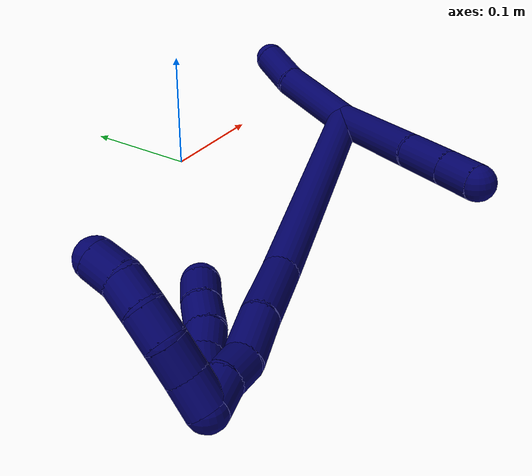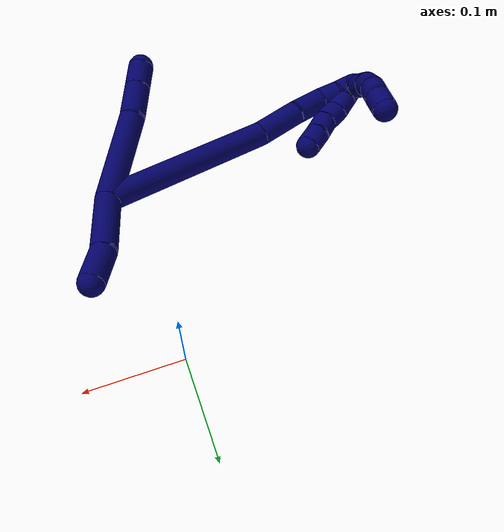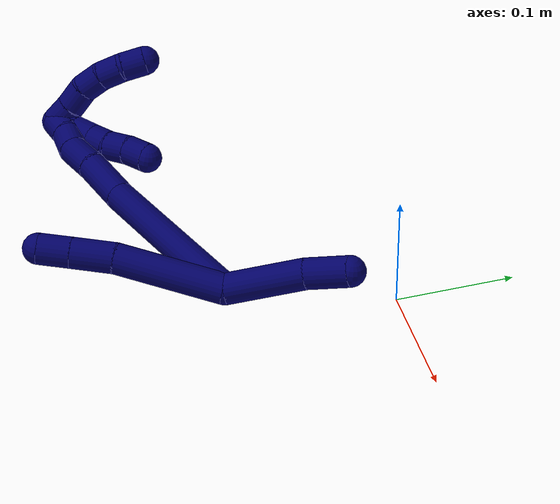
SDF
<sdf version="1.7">
 <world name="default">
  <model name="7">
   <static>0</static>
   <link name="7">
    <collision name="collision-cylinder-e_1_2_8">
     <pose>-0.015182 -0.04192 7.1e-05 1.56909 -0.347479 -0.3469</pose>
     <geometry><cylinder><radius>0.0125</radius><length>0.08917</length></cylinder></geometry>
     <surface>
      <friction><ode><mu>1.16</mu><mu2>1.16</mu2><slip1>0</slip1><slip2>0</slip2></ode></friction>
      <contact><ode><kp>1e+06</kp><kd>1</kd><max_vel>0</max_vel><min_depth>0.001</min_depth></ode></contact>
     </surface>
    </collision>
    <visual name="visual-cylinder-e_1_2_8">
     <pose>-0.015182 -0.04192 7.1e-05 1.56909 -0.347479 -0.3469</pose>
     <geometry><cylinder><radius>0.0125</radius><length>0.08917</length></cylinder></geometry>
     <material><ambient>0.003922 0 0.403922 1</ambient></material>
    </visual>
    <collision name="collision-cylinder-e_2_8_9">
     <pose>-0.034183 -0.100628 -0.001366 1.66041 -0.222776 -0.243495</pose>
     <geometry><cylinder><radius>0.0125</radius><length>0.034565</length></cylinder></geometry>
     <surface>
      <friction><ode><mu>1.16</mu><mu2>1.16</mu2><slip1>0</slip1><slip2>0</slip2></ode></friction>
      <contact><ode><kp>1e+06</kp><kd>1</kd><max_vel>0</max_vel><min_depth>0.001</min_depth></ode></contact>
     </surface>
    </collision>
    <visual name="visual-cylinder-e_2_8_9">
     <pose>-0.034183 -0.100628 -0.001366 1.66041 -0.222776 -0.243495</pose>
     <geometry><cylinder><radius>0.0125</radius><length>0.034565</length></cylinder></geometry>
     <material><ambient>0.003922 0 0.403922 1</ambient></material>
    </visual>
    <collision name="collision-cylinder-e_3_9_6">
     <pose>-0.040886 -0.130171 -0.004084 1.66534 -0.221406 -0.243187</pose>
     <geometry><cylinder><radius>0.0125</radius><length>0.026265</length></cylinder></geometry>
     <surface>
      <friction><ode><mu>1.16</mu><mu2>1.16</mu2><slip1>0</slip1><slip2>0</slip2></ode></friction>
      <contact><ode><kp>1e+06</kp><kd>1</kd><max_vel>0</max_vel><min_depth>0.001</min_depth></ode></contact>
     </surface>
    </collision>
    <visual name="visual-cylinder-e_3_9_6">
     <pose>-0.040886 -0.130171 -0.004084 1.66534 -0.221406 -0.243187</pose>
     <geometry><cylinder><radius>0.0125</radius><length>0.026265</length></cylinder></geometry>
     <material><ambient>0.003922 0 0.403922 1</ambient></material>
    </visual>
    <collision name="collision-cylinder-e_1_2_10">
     <pose>0.002641 0.029581 0.011891 -1.18857 0.082659 -0.055877</pose>
     <geometry><cylinder><radius>0.0125</radius><length>0.063981</length></cylinder></geometry>
     <surface>
      <friction><ode><mu>1.16</mu><mu2>1.16</mu2><slip1>0</slip1><slip2>0</slip2></ode></friction>
      <contact><ode><kp>1e+06</kp><kd>1</kd><max_vel>0</max_vel><min_depth>0.001</min_depth></ode></contact>
     </surface>
    </collision>
    <visual name="visual-cylinder-e_1_2_10">
     <pose>0.002641 0.029581 0.011891 -1.18857 0.082659 -0.055877</pose>
     <geometry><cylinder><radius>0.0125</radius><length>0.063981</length></cylinder></geometry>
     <material><ambient>0.003922 0 0.403922 1</ambient></material>
    </visual>
    <collision name="collision-cylinder-e_2_10_5">
     <pose>0.010724 0.074946 0.030535 -1.16657 0.306951 -0.203449</pose>
     <geometry><cylinder><radius>0.0125</radius><length>0.036019</length></cylinder></geometry>
     <surface>
      <friction><ode><mu>1.16</mu><mu2>1.16</mu2><slip1>0</slip1><slip2>0</slip2></ode></friction>
      <contact><ode><kp>1e+06</kp><kd>1</kd><max_vel>0</max_vel><min_depth>0.001</min_depth></ode></contact>
     </surface>
    </collision>
    <visual name="visual-cylinder-e_2_10_5">
     <pose>0.010724 0.074946 0.030535 -1.16657 0.306951 -0.203449</pose>
     <geometry><cylinder><radius>0.0125</radius><length>0.036019</length></cylinder></geometry>
     <material><ambient>0.003922 0 0.403922 1</ambient></material>
    </visual>
    <collision name="collision-cylinder-e_1_2_11">
     <pose>-0.079271 -0.035393 -0.018681 2.05645 -1.10327 -1.5912</pose>
     <geometry><cylinder><radius>0.0125</radius><length>0.1776</length></cylinder></geometry>
     <surface>
      <friction><ode><mu>1.16</mu><mu2>1.16</mu2><slip1>0</slip1><slip2>0</slip2></ode></friction>
      <contact><ode><kp>1e+06</kp><kd>1</kd><max_vel>0</max_vel><min_depth>0.001</min_depth></ode></contact>
     </surface>
    </collision>
    <visual name="visual-cylinder-e_1_2_11">
     <pose>-0.079271 -0.035393 -0.018681 2.05645 -1.10327 -1.5912</pose>
     <geometry><cylinder><radius>0.0125</radius><length>0.1776</length></cylinder></geometry>
     <material><ambient>0.003922 0 0.403922 1</ambient></material>
    </visual>
    <collision name="collision-cylinder-e_2_11_12">
     <pose>-0.179463 -0.081732 -0.038278 1.6543 -1.08734 -1.16274</pose>
     <geometry><cylinder><radius>0.0125</radius><length>0.047261</length></cylinder></geometry>
     <surface>
      <friction><ode><mu>1.16</mu><mu2>1.16</mu2><slip1>0</slip1><slip2>0</slip2></ode></friction>
      <contact><ode><kp>1e+06</kp><kd>1</kd><max_vel>0</max_vel><min_depth>0.001</min_depth></ode></contact>
     </surface>
    </collision>
    <visual name="visual-cylinder-e_2_11_12">
     <pose>-0.179463 -0.081732 -0.038278 1.6543 -1.08734 -1.16274</pose>
     <geometry><cylinder><radius>0.0125</radius><length>0.047261</length></cylinder></geometry>
     <material><ambient>0.003922 0 0.403922 1</ambient></material>
    </visual>
    <collision name="collision-cylinder-e_3_12_13">
     <pose>-0.215279 -0.100196 -0.041974 1.92487 -1.07705 -1.41799</pose>
     <geometry><cylinder><radius>0.0125</radius><length>0.033826</length></cylinder></geometry>
     <surface>
      <friction><ode><mu>1.16</mu><mu2>1.16</mu2><slip1>0</slip1><slip2>0</slip2></ode></friction>
      <contact><ode><kp>1e+06</kp><kd>1</kd><max_vel>0</max_vel><min_depth>0.001</min_depth></ode></contact>
     </surface>
    </collision>
    <visual name="visual-cylinder-e_3_12_13">
     <pose>-0.215279 -0.100196 -0.041974 1.92487 -1.07705 -1.41799</pose>
     <geometry><cylinder><radius>0.0125</radius><length>0.033826</length></cylinder></geometry>
     <material><ambient>0.003922 0 0.403922 1</ambient></material>
    </visual>
    <collision name="collision-cylinder-e_4_13_14">
     <pose>-0.240054 -0.110438 -0.043658 1.18863 -1.28208 -0.93412</pose>
     <geometry><cylinder><radius>0.0125</radius><length>0.020619</length></cylinder></geometry>
     <surface>
      <friction><ode><mu>1.16</mu><mu2>1.16</mu2><slip1>0</slip1><slip2>0</slip2></ode></friction>
      <contact><ode><kp>1e+06</kp><kd>1</kd><max_vel>0</max_vel><min_depth>0.001</min_depth></ode></contact>
     </surface>
    </collision>
    <visual name="visual-cylinder-e_4_13_14">
     <pose>-0.240054 -0.110438 -0.043658 1.18863 -1.28208 -0.93412</pose>
     <geometry><cylinder><radius>0.0125</radius><length>0.020619</length></cylinder></geometry>
     <material><ambient>0.003922 0 0.403922 1</ambient></material>
    </visual>
    <collision name="collision-cylinder-e_5_14_1">
     <pose>-0.259407 -0.117251 -0.043374 1.76635 -1.15612 -1.34251</pose>
     <geometry><cylinder><radius>0.0125</radius><length>0.020694</length></cylinder></geometry>
     <surface>
      <friction><ode><mu>1.16</mu><mu2>1.16</mu2><slip1>0</slip1><slip2>0</slip2></ode></friction>
      <contact><ode><kp>1e+06</kp><kd>1</kd><max_vel>0</max_vel><min_depth>0.001</min_depth></ode></contact>
     </surface>
    </collision>
    <visual name="visual-cylinder-e_5_14_1">
     <pose>-0.259407 -0.117251 -0.043374 1.76635 -1.15612 -1.34251</pose>
     <geometry><cylinder><radius>0.0125</radius><length>0.020694</length></cylinder></geometry>
     <material><ambient>0.003922 0 0.403922 1</ambient></material>
    </visual>
    <collision name="collision-cylinder-e_1_1_15">
     <pose>-0.262613 -0.113568 -0.043592 -1.4948 0.67694 -0.630691</pose>
     <geometry><cylinder><radius>0.0125</radius><length>0.02</length></cylinder></geometry>
     <surface>
      <friction><ode><mu>1.16</mu><mu2>1.16</mu2><slip1>0</slip1><slip2>0</slip2></ode></friction>
      <contact><ode><kp>1e+06</kp><kd>1</kd><max_vel>0</max_vel><min_depth>0.001</min_depth></ode></contact>
     </surface>
    </collision>
    <visual name="visual-cylinder-e_1_1_15">
     <pose>-0.262613 -0.113568 -0.043592 -1.4948 0.67694 -0.630691</pose>
     <geometry><cylinder><radius>0.0125</radius><length>0.02</length></cylinder></geometry>
     <material><ambient>0.003922 0 0.403922 1</ambient></material>
    </visual>
    <collision name="collision-cylinder-e_2_15_16">
     <pose>-0.249959 -0.098133 -0.042325 -1.48292 0.693153 -0.638817</pose>
     <geometry><cylinder><radius>0.0125</radius><length>0.02</length></cylinder></geometry>
     <surface>
      <friction><ode><mu>1.16</mu><mu2>1.16</mu2><slip1>0</slip1><slip2>0</slip2></ode></friction>
      <contact><ode><kp>1e+06</kp><kd>1</kd><max_vel>0</max_vel><min_depth>0.001</min_depth></ode></contact>
     </surface>
    </collision>
    <visual name="visual-cylinder-e_2_15_16">
     <pose>-0.249959 -0.098133 -0.042325 -1.48292 0.693153 -0.638817</pose>
     <geometry><cylinder><radius>0.0125</radius><length>0.02</length></cylinder></geometry>
     <material><ambient>0.003922 0 0.403922 1</ambient></material>
    </visual>
    <collision name="collision-cylinder-e_3_16_17">
     <pose>-0.236189 -0.084091 -0.039452 -1.23905 0.830204 -0.609067</pose>
     <geometry><cylinder><radius>0.0125</radius><length>0.02</length></cylinder></geometry>
     <surface>
      <friction><ode><mu>1.16</mu><mu2>1.16</mu2><slip1>0</slip1><slip2>0</slip2></ode></friction>
      <contact><ode><kp>1e+06</kp><kd>1</kd><max_vel>0</max_vel><min_depth>0.001</min_depth></ode></contact>
     </surface>
    </collision>
    <visual name="visual-cylinder-e_3_16_17">
     <pose>-0.236189 -0.084091 -0.039452 -1.23905 0.830204 -0.609067</pose>
     <geometry><cylinder><radius>0.0125</radius><length>0.02</length></cylinder></geometry>
     <material><ambient>0.003922 0 0.403922 1</ambient></material>
    </visual>
    <collision name="collision-cylinder-e_4_17_18">
     <pose>-0.223065 -0.069908 -0.034778 -1.26352 0.611744 -0.454212</pose>
     <geometry><cylinder><radius>0.0125</radius><length>0.02</length></cylinder></geometry>
     <surface>
      <friction><ode><mu>1.16</mu><mu2>1.16</mu2><slip1>0</slip1><slip2>0</slip2></ode></friction>
      <contact><ode><kp>1e+06</kp><kd>1</kd><max_vel>0</max_vel><min_depth>0.001</min_depth></ode></contact>
     </surface>
    </collision>
    <visual name="visual-cylinder-e_4_17_18">
     <pose>-0.223065 -0.069908 -0.034778 -1.26352 0.611744 -0.454212</pose>
     <geometry><cylinder><radius>0.0125</radius><length>0.02</length></cylinder></geometry>
     <material><ambient>0.003922 0 0.403922 1</ambient></material>
    </visual>
    <collision name="collision-cylinder-e_5_18_4">
     <pose>-0.210773 -0.054672 -0.030943 -1.38988 0.714076 -0.603002</pose>
     <geometry><cylinder><radius>0.0125</radius><length>0.02</length></cylinder></geometry>
     <surface>
      <friction><ode><mu>1.16</mu><mu2>1.16</mu2><slip1>0</slip1><slip2>0</slip2></ode></friction>
      <contact><ode><kp>1e+06</kp><kd>1</kd><max_vel>0</max_vel><min_depth>0.001</min_depth></ode></contact>
     </surface>
    </collision>
    <visual name="visual-cylinder-e_5_18_4">
     <pose>-0.210773 -0.054672 -0.030943 -1.38988 0.714076 -0.603002</pose>
     <geometry><cylinder><radius>0.0125</radius><length>0.02</length></cylinder></geometry>
     <material><ambient>0.003922 0 0.403922 1</ambient></material>
    </visual>
    <collision name="collision-cylinder-e_1_1_19">
     <pose>-0.269407 -0.115863 -0.035834 -0.580605 -0.052992 0.015834</pose>
     <geometry><cylinder><radius>0.0125</radius><length>0.02</length></cylinder></geometry>
     <surface>
      <friction><ode><mu>1.16</mu><mu2>1.16</mu2><slip1>0</slip1><slip2>0</slip2></ode></friction>
      <contact><ode><kp>1e+06</kp><kd>1</kd><max_vel>0</max_vel><min_depth>0.001</min_depth></ode></contact>
     </surface>
    </collision>
    <visual name="visual-cylinder-e_1_1_19">
     <pose>-0.269407 -0.115863 -0.035834 -0.580605 -0.052992 0.015834</pose>
     <geometry><cylinder><radius>0.0125</radius><length>0.02</length></cylinder></geometry>
     <material><ambient>0.003922 0 0.403922 1</ambient></material>
    </visual>
    <collision name="collision-cylinder-e_2_19_20">
     <pose>-0.271041 -0.105632 -0.018756 -0.498627 -0.110673 0.028206</pose>
     <geometry><cylinder><radius>0.0125</radius><length>0.02</length></cylinder></geometry>
     <surface>
      <friction><ode><mu>1.16</mu><mu2>1.16</mu2><slip1>0</slip1><slip2>0</slip2></ode></friction>
      <contact><ode><kp>1e+06</kp><kd>1</kd><max_vel>0</max_vel><min_depth>0.001</min_depth></ode></contact>
     </surface>
    </collision>
    <visual name="visual-cylinder-e_2_19_20">
     <pose>-0.271041 -0.105632 -0.018756 -0.498627 -0.110673 0.028206</pose>
     <geometry><cylinder><radius>0.0125</radius><length>0.02</length></cylinder></geometry>
     <material><ambient>0.003922 0 0.403922 1</ambient></material>
    </visual>
    <collision name="collision-cylinder-e_3_20_21">
     <pose>-0.272088 -0.09391 -0.002856 -0.771065 0.005759 -0.002337</pose>
     <geometry><cylinder><radius>0.0125</radius><length>0.02</length></cylinder></geometry>
     <surface>
      <friction><ode><mu>1.16</mu><mu2>1.16</mu2><slip1>0</slip1><slip2>0</slip2></ode></friction>
      <contact><ode><kp>1e+06</kp><kd>1</kd><max_vel>0</max_vel><min_depth>0.001</min_depth></ode></contact>
     </surface>
    </collision>
    <visual name="visual-cylinder-e_3_20_21">
     <pose>-0.272088 -0.09391 -0.002856 -0.771065 0.005759 -0.002337</pose>
     <geometry><cylinder><radius>0.0125</radius><length>0.02</length></cylinder></geometry>
     <material><ambient>0.003922 0 0.403922 1</ambient></material>
    </visual>
    <collision name="collision-cylinder-e_4_21_22">
     <pose>-0.271296 -0.07871 0.009947 -0.970826 0.073478 -0.038773</pose>
     <geometry><cylinder><radius>0.0125</radius><length>0.02</length></cylinder></geometry>
     <surface>
      <friction><ode><mu>1.16</mu><mu2>1.16</mu2><slip1>0</slip1><slip2>0</slip2></ode></friction>
      <contact><ode><kp>1e+06</kp><kd>1</kd><max_vel>0</max_vel><min_depth>0.001</min_depth></ode></contact>
     </surface>
    </collision>
    <visual name="visual-cylinder-e_4_21_22">
     <pose>-0.271296 -0.07871 0.009947 -0.970826 0.073478 -0.038773</pose>
     <geometry><cylinder><radius>0.0125</radius><length>0.02</length></cylinder></geometry>
     <material><ambient>0.003922 0 0.403922 1</ambient></material>
    </visual>
    <collision name="collision-cylinder-e_5_22_3">
     <pose>-0.2715 -0.061212 0.019216 -1.19667 -0.093978 0.064089</pose>
     <geometry><cylinder><radius>0.0125</radius><length>0.02</length></cylinder></geometry>
     <surface>
      <friction><ode><mu>1.16</mu><mu2>1.16</mu2><slip1>0</slip1><slip2>0</slip2></ode></friction>
      <contact><ode><kp>1e+06</kp><kd>1</kd><max_vel>0</max_vel><min_depth>0.001</min_depth></ode></contact>
     </surface>
    </collision>
    <visual name="visual-cylinder-e_5_22_3">
     <pose>-0.2715 -0.061212 0.019216 -1.19667 -0.093978 0.064089</pose>
     <geometry><cylinder><radius>0.0125</radius><length>0.02</length></cylinder></geometry>
     <material><ambient>0.003922 0 0.403922 1</ambient></material>
    </visual>
    <collision name="collision-sphere-3">
     <pose>-0.272439 -0.051945 0.022855 0 -0 0</pose>
     <geometry><sphere><radius>0.0125</radius></sphere></geometry>
     <surface>
      <friction><ode><mu>1.16</mu><mu2>1.16</mu2><slip1>0</slip1><slip2>0</slip2></ode></friction>
      <contact><ode><kp>1e+06</kp><kd>1</kd><max_vel>0</max_vel><min_depth>0.001</min_depth></ode></contact>
     </surface>
    </collision>
    <visual name="visual-sphere-3">
     <pose>-0.272439 -0.051945 0.022855 0 -0 0</pose>
     <geometry><sphere><radius>0.0125</radius></sphere></geometry>
     <material><ambient>0.003922 0 0.403922 1</ambient></material>
    </visual>
    <collision name="collision-sphere-22">
     <pose>-0.270562 -0.070479 0.015578 0 -0 0</pose>
     <geometry><sphere><radius>0.0125</radius></sphere></geometry>
     <surface>
      <friction><ode><mu>1.16</mu><mu2>1.16</mu2><slip1>0</slip1><slip2>0</slip2></ode></friction>
      <contact><ode><kp>1e+06</kp><kd>1</kd><max_vel>0</max_vel><min_depth>0.001</min_depth></ode></contact>
     </surface>
    </collision>
    <visual name="visual-sphere-22">
     <pose>-0.270562 -0.070479 0.015578 0 -0 0</pose>
     <geometry><sphere><radius>0.0125</radius></sphere></geometry>
     <material><ambient>0.003922 0 0.403922 1</ambient></material>
    </visual>
    <collision name="collision-sphere-21">
     <pose>-0.27203 -0.086941 0.004316 0 -0 0</pose>
     <geometry><sphere><radius>0.0125</radius></sphere></geometry>
     <surface>
      <friction><ode><mu>1.16</mu><mu2>1.16</mu2><slip1>0</slip1><slip2>0</slip2></ode></friction>
      <contact><ode><kp>1e+06</kp><kd>1</kd><max_vel>0</max_vel><min_depth>0.001</min_depth></ode></contact>
     </surface>
    </collision>
    <visual name="visual-sphere-21">
     <pose>-0.27203 -0.086941 0.004316 0 -0 0</pose>
     <geometry><sphere><radius>0.0125</radius></sphere></geometry>
     <material><ambient>0.003922 0 0.403922 1</ambient></material>
    </visual>
    <collision name="collision-sphere-20">
     <pose>-0.272145 -0.100879 -0.010027 0 -0 0</pose>
     <geometry><sphere><radius>0.0125</radius></sphere></geometry>
     <surface>
      <friction><ode><mu>1.16</mu><mu2>1.16</mu2><slip1>0</slip1><slip2>0</slip2></ode></friction>
      <contact><ode><kp>1e+06</kp><kd>1</kd><max_vel>0</max_vel><min_depth>0.001</min_depth></ode></contact>
     </surface>
    </collision>
    <visual name="visual-sphere-20">
     <pose>-0.272145 -0.100879 -0.010027 0 -0 0</pose>
     <geometry><sphere><radius>0.0125</radius></sphere></geometry>
     <material><ambient>0.003922 0 0.403922 1</ambient></material>
    </visual>
    <collision name="collision-sphere-19">
     <pose>-0.269937 -0.110385 -0.027484 0 -0 0</pose>
     <geometry><sphere><radius>0.0125</radius></sphere></geometry>
     <surface>
      <friction><ode><mu>1.16</mu><mu2>1.16</mu2><slip1>0</slip1><slip2>0</slip2></ode></friction>
      <contact><ode><kp>1e+06</kp><kd>1</kd><max_vel>0</max_vel><min_depth>0.001</min_depth></ode></contact>
     </surface>
    </collision>
    <visual name="visual-sphere-19">
     <pose>-0.269937 -0.110385 -0.027484 0 -0 0</pose>
     <geometry><sphere><radius>0.0125</radius></sphere></geometry>
     <material><ambient>0.003922 0 0.403922 1</ambient></material>
    </visual>
    <collision name="collision-sphere-5">
     <pose>0.016166 0.09073 0.037287 0 -0 0</pose>
     <geometry><sphere><radius>0.0125</radius></sphere></geometry>
     <surface>
      <friction><ode><mu>1.16</mu><mu2>1.16</mu2><slip1>0</slip1><slip2>0</slip2></ode></friction>
      <contact><ode><kp>1e+06</kp><kd>1</kd><max_vel>0</max_vel><min_depth>0.001</min_depth></ode></contact>
     </surface>
    </collision>
    <visual name="visual-sphere-5">
     <pose>0.016166 0.09073 0.037287 0 -0 0</pose>
     <geometry><sphere><radius>0.0125</radius></sphere></geometry>
     <material><ambient>0.003922 0 0.403922 1</ambient></material>
    </visual>
    <collision name="collision-sphere-10">
     <pose>0.005283 0.059162 0.023782 0 -0 0</pose>
     <geometry><sphere><radius>0.0125</radius></sphere></geometry>
     <surface>
      <friction><ode><mu>1.16</mu><mu2>1.16</mu2><slip1>0</slip1><slip2>0</slip2></ode></friction>
      <contact><ode><kp>1e+06</kp><kd>1</kd><max_vel>0</max_vel><min_depth>0.001</min_depth></ode></contact>
     </surface>
    </collision>
    <visual name="visual-sphere-10">
     <pose>0.005283 0.059162 0.023782 0 -0 0</pose>
     <geometry><sphere><radius>0.0125</radius></sphere></geometry>
     <material><ambient>0.003922 0 0.403922 1</ambient></material>
    </visual>
    <collision name="collision-sphere-6">
     <pose>-0.043769 -0.142926 -0.005293 0 -0 0</pose>
     <geometry><sphere><radius>0.0125</radius></sphere></geometry>
     <surface>
      <friction><ode><mu>1.16</mu><mu2>1.16</mu2><slip1>0</slip1><slip2>0</slip2></ode></friction>
      <contact><ode><kp>1e+06</kp><kd>1</kd><max_vel>0</max_vel><min_depth>0.001</min_depth></ode></contact>
     </surface>
    </collision>
    <visual name="visual-sphere-6">
     <pose>-0.043769 -0.142926 -0.005293 0 -0 0</pose>
     <geometry><sphere><radius>0.0125</radius></sphere></geometry>
     <material><ambient>0.003922 0 0.403922 1</ambient></material>
    </visual>
    <collision name="collision-sphere-9">
     <pose>-0.038002 -0.117416 -0.002874 0 -0 0</pose>
     <geometry><sphere><radius>0.0125</radius></sphere></geometry>
     <surface>
      <friction><ode><mu>1.16</mu><mu2>1.16</mu2><slip1>0</slip1><slip2>0</slip2></ode></friction>
      <contact><ode><kp>1e+06</kp><kd>1</kd><max_vel>0</max_vel><min_depth>0.001</min_depth></ode></contact>
     </surface>
    </collision>
    <visual name="visual-sphere-9">
     <pose>-0.038002 -0.117416 -0.002874 0 -0 0</pose>
     <geometry><sphere><radius>0.0125</radius></sphere></geometry>
     <material><ambient>0.003922 0 0.403922 1</ambient></material>
    </visual>
    <collision name="collision-sphere-2">
     <geometry><sphere><radius>0.0125</radius></sphere></geometry>
     <surface>
      <friction><ode><mu>1.16</mu><mu2>1.16</mu2><slip1>0</slip1><slip2>0</slip2></ode></friction>
      <contact><ode><kp>1e+06</kp><kd>1</kd><max_vel>0</max_vel><min_depth>0.001</min_depth></ode></contact>
     </surface>
    </collision>
    <visual name="visual-sphere-2">
     <geometry><sphere><radius>0.0125</radius></sphere></geometry>
     <material><ambient>0.003922 0 0.403922 1</ambient></material>
    </visual>
    <collision name="collision-sphere-8">
     <pose>-0.030365 -0.083841 0.000143 0 -0 0</pose>
     <geometry><sphere><radius>0.0125</radius></sphere></geometry>
     <surface>
      <friction><ode><mu>1.16</mu><mu2>1.16</mu2><slip1>0</slip1><slip2>0</slip2></ode></friction>
      <contact><ode><kp>1e+06</kp><kd>1</kd><max_vel>0</max_vel><min_depth>0.001</min_depth></ode></contact>
     </surface>
    </collision>
    <visual name="visual-sphere-8">
     <pose>-0.030365 -0.083841 0.000143 0 -0 0</pose>
     <geometry><sphere><radius>0.0125</radius></sphere></geometry>
     <material><ambient>0.003922 0 0.403922 1</ambient></material>
    </visual>
    <collision name="collision-sphere-11">
     <pose>-0.158541 -0.070785 -0.037362 0 -0 0</pose>
     <geometry><sphere><radius>0.0125</radius></sphere></geometry>
     <surface>
      <friction><ode><mu>1.16</mu><mu2>1.16</mu2><slip1>0</slip1><slip2>0</slip2></ode></friction>
      <contact><ode><kp>1e+06</kp><kd>1</kd><max_vel>0</max_vel><min_depth>0.001</min_depth></ode></contact>
     </surface>
    </collision>
    <visual name="visual-sphere-11">
     <pose>-0.158541 -0.070785 -0.037362 0 -0 0</pose>
     <geometry><sphere><radius>0.0125</radius></sphere></geometry>
     <material><ambient>0.003922 0 0.403922 1</ambient></material>
    </visual>
    <collision name="collision-sphere-12">
     <pose>-0.200386 -0.092678 -0.039194 0 -0 0</pose>
     <geometry><sphere><radius>0.0125</radius></sphere></geometry>
     <surface>
      <friction><ode><mu>1.16</mu><mu2>1.16</mu2><slip1>0</slip1><slip2>0</slip2></ode></friction>
      <contact><ode><kp>1e+06</kp><kd>1</kd><max_vel>0</max_vel><min_depth>0.001</min_depth></ode></contact>
     </surface>
    </collision>
    <visual name="visual-sphere-12">
     <pose>-0.200386 -0.092678 -0.039194 0 -0 0</pose>
     <geometry><sphere><radius>0.0125</radius></sphere></geometry>
     <material><ambient>0.003922 0 0.403922 1</ambient></material>
    </visual>
    <collision name="collision-sphere-13">
     <pose>-0.230172 -0.107714 -0.044753 0 -0 0</pose>
     <geometry><sphere><radius>0.0125</radius></sphere></geometry>
     <surface>
      <friction><ode><mu>1.16</mu><mu2>1.16</mu2><slip1>0</slip1><slip2>0</slip2></ode></friction>
      <contact><ode><kp>1e+06</kp><kd>1</kd><max_vel>0</max_vel><min_depth>0.001</min_depth></ode></contact>
     </surface>
    </collision>
    <visual name="visual-sphere-13">
     <pose>-0.230172 -0.107714 -0.044753 0 -0 0</pose>
     <geometry><sphere><radius>0.0125</radius></sphere></geometry>
     <material><ambient>0.003922 0 0.403922 1</ambient></material>
    </visual>
    <collision name="collision-sphere-14">
     <pose>-0.249937 -0.113162 -0.042564 0 -0 0</pose>
     <geometry><sphere><radius>0.0125</radius></sphere></geometry>
     <surface>
      <friction><ode><mu>1.16</mu><mu2>1.16</mu2><slip1>0</slip1><slip2>0</slip2></ode></friction>
      <contact><ode><kp>1e+06</kp><kd>1</kd><max_vel>0</max_vel><min_depth>0.001</min_depth></ode></contact>
     </surface>
    </collision>
    <visual name="visual-sphere-14">
     <pose>-0.249937 -0.113162 -0.042564 0 -0 0</pose>
     <geometry><sphere><radius>0.0125</radius></sphere></geometry>
     <material><ambient>0.003922 0 0.403922 1</ambient></material>
    </visual>
    <collision name="collision-sphere-1">
     <pose>-0.268877 -0.12134 -0.044184 0 -0 0</pose>
     <geometry><sphere><radius>0.0125</radius></sphere></geometry>
     <surface>
      <friction><ode><mu>1.16</mu><mu2>1.16</mu2><slip1>0</slip1><slip2>0</slip2></ode></friction>
      <contact><ode><kp>1e+06</kp><kd>1</kd><max_vel>0</max_vel><min_depth>0.001</min_depth></ode></contact>
     </surface>
    </collision>
    <visual name="visual-sphere-1">
     <pose>-0.268877 -0.12134 -0.044184 0 -0 0</pose>
     <geometry><sphere><radius>0.0125</radius></sphere></geometry>
     <material><ambient>0.003922 0 0.403922 1</ambient></material>
    </visual>
    <collision name="collision-sphere-18">
     <pose>-0.217322 -0.062105 -0.032302 0 -0 0</pose>
     <geometry><sphere><radius>0.0125</radius></sphere></geometry>
     <surface>
      <friction><ode><mu>1.16</mu><mu2>1.16</mu2><slip1>0</slip1><slip2>0</slip2></ode></friction>
      <contact><ode><kp>1e+06</kp><kd>1</kd><max_vel>0</max_vel><min_depth>0.001</min_depth></ode></contact>
     </surface>
    </collision>
    <visual name="visual-sphere-18">
     <pose>-0.217322 -0.062105 -0.032302 0 -0 0</pose>
     <geometry><sphere><radius>0.0125</radius></sphere></geometry>
     <material><ambient>0.003922 0 0.403922 1</ambient></material>
    </visual>
    <collision name="collision-sphere-15">
     <pose>-0.256349 -0.105795 -0.043 0 -0 0</pose>
     <geometry><sphere><radius>0.0125</radius></sphere></geometry>
     <surface>
      <friction><ode><mu>1.16</mu><mu2>1.16</mu2><slip1>0</slip1><slip2>0</slip2></ode></friction>
      <contact><ode><kp>1e+06</kp><kd>1</kd><max_vel>0</max_vel><min_depth>0.001</min_depth></ode></contact>
     </surface>
    </collision>
    <visual name="visual-sphere-15">
     <pose>-0.256349 -0.105795 -0.043 0 -0 0</pose>
     <geometry><sphere><radius>0.0125</radius></sphere></geometry>
     <material><ambient>0.003922 0 0.403922 1</ambient></material>
    </visual>
    <collision name="collision-sphere-16">
     <pose>-0.24357 -0.09047 -0.04165 0 -0 0</pose>
     <geometry><sphere><radius>0.0125</radius></sphere></geometry>
     <surface>
      <friction><ode><mu>1.16</mu><mu2>1.16</mu2><slip1>0</slip1><slip2>0</slip2></ode></friction>
      <contact><ode><kp>1e+06</kp><kd>1</kd><max_vel>0</max_vel><min_depth>0.001</min_depth></ode></contact>
     </surface>
    </collision>
    <visual name="visual-sphere-16">
     <pose>-0.24357 -0.09047 -0.04165 0 -0 0</pose>
     <geometry><sphere><radius>0.0125</radius></sphere></geometry>
     <material><ambient>0.003922 0 0.403922 1</ambient></material>
    </visual>
    <collision name="collision-sphere-17">
     <pose>-0.228808 -0.077711 -0.037255 0 -0 0</pose>
     <geometry><sphere><radius>0.0125</radius></sphere></geometry>
     <surface>
      <friction><ode><mu>1.16</mu><mu2>1.16</mu2><slip1>0</slip1><slip2>0</slip2></ode></friction>
      <contact><ode><kp>1e+06</kp><kd>1</kd><max_vel>0</max_vel><min_depth>0.001</min_depth></ode></contact>
     </surface>
    </collision>
    <visual name="visual-sphere-17">
     <pose>-0.228808 -0.077711 -0.037255 0 -0 0</pose>
     <geometry><sphere><radius>0.0125</radius></sphere></geometry>
     <material><ambient>0.003922 0 0.403922 1</ambient></material>
    </visual>
    <collision name="collision-sphere-4">
     <pose>-0.204224 -0.047238 -0.029583 0 -0 0</pose>
     <geometry><sphere><radius>0.0125</radius></sphere></geometry>
     <surface>
      <friction><ode><mu>1.16</mu><mu2>1.16</mu2><slip1>0</slip1><slip2>0</slip2></ode></friction>
      <contact><ode><kp>1e+06</kp><kd>1</kd><max_vel>0</max_vel><min_depth>0.001</min_depth></ode></contact>
     </surface>
    </collision>
    <visual name="visual-sphere-4">
     <pose>-0.204224 -0.047238 -0.029583 0 -0 0</pose>
     <geometry><sphere><radius>0.0125</radius></sphere></geometry>
     <material><ambient>0.003922 0 0.403922 1</ambient></material>
    </visual>
    <inertial>
     <pose>-0.125297 -0.055731 -0.014692 0 -0 0</pose>
     <mass>0.75</mass>
     <inertia>
      <ixx>-0.000165</ixx>
      <ixy>0</ixy>
      <ixz>0</ixz>
      <iyy>0.00017</iyy>
      <iyz>0</iyz>
      <izz>0.000685</izz>
     </inertia>
    </inertial>
   </link>
   <pose>0.025121 -0.149811 0.070053 -0.147217 -0.02616 -0.18883</pose>
  </model>
 </world>
</sdf>
